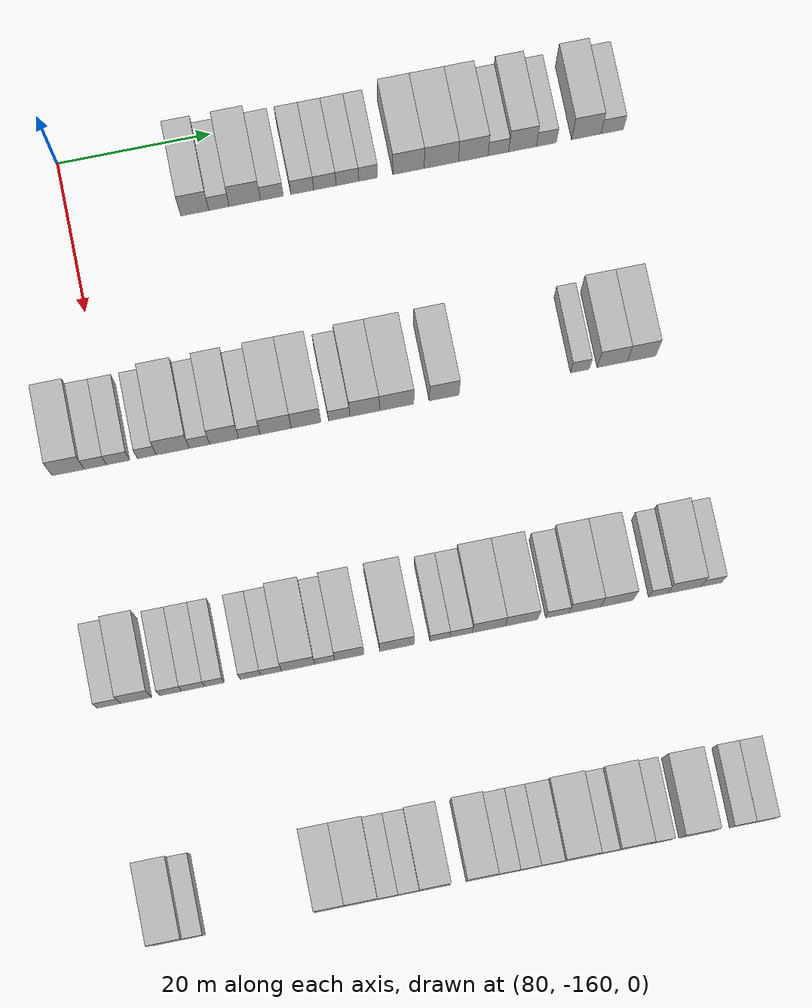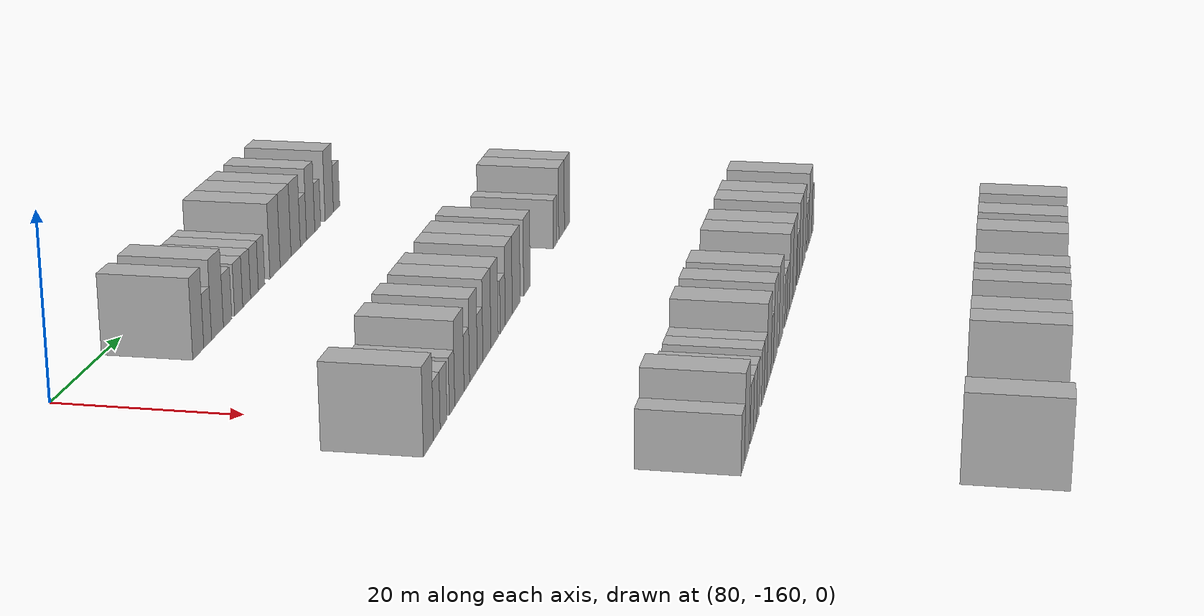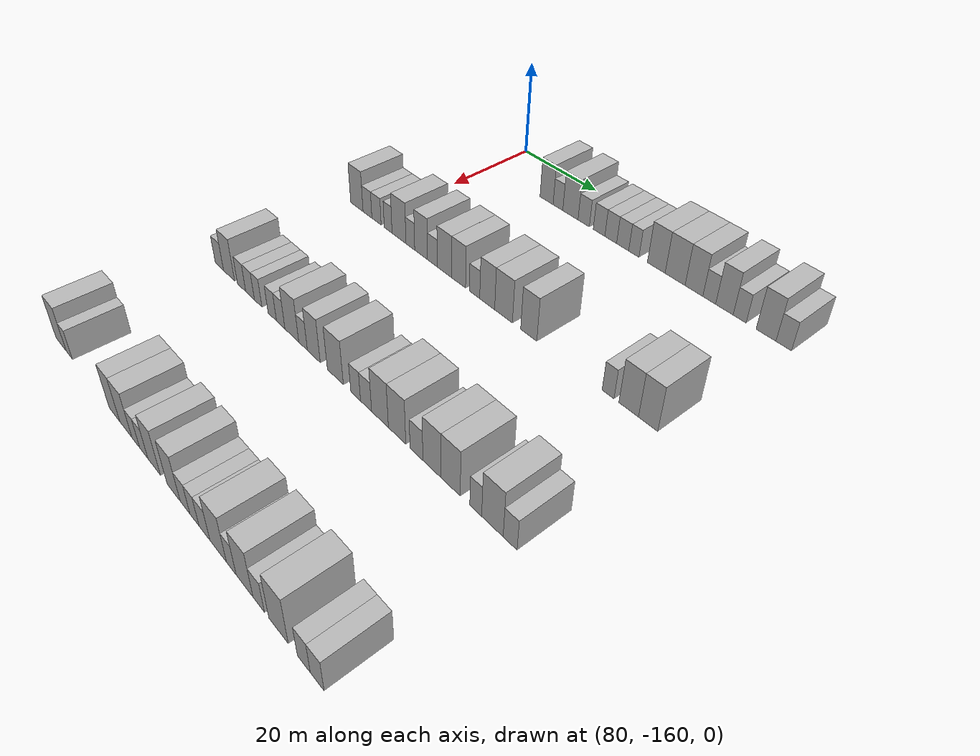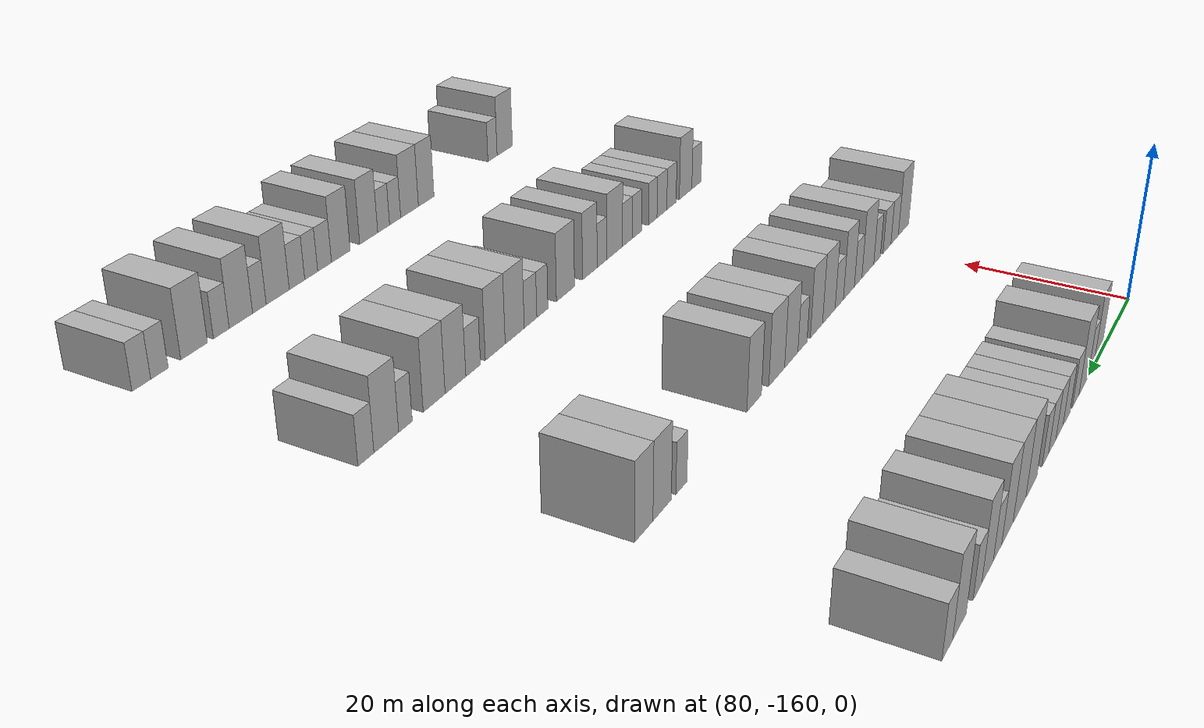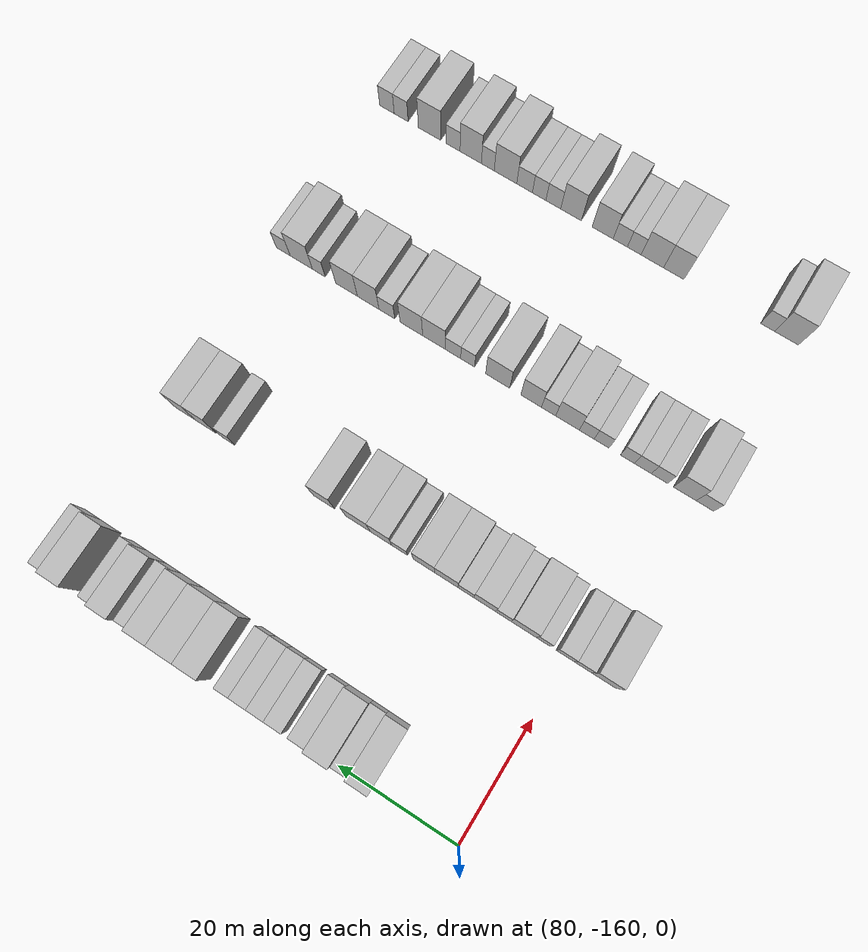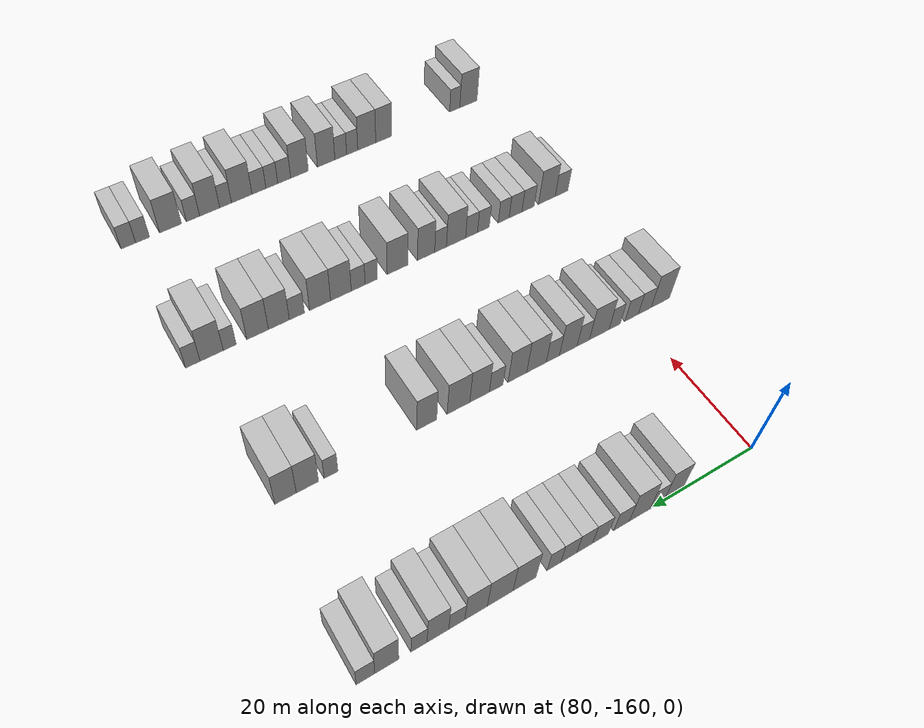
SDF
<sdf version="1.6">
 <world name="default">
  <model name="building_549">
   <static>1</static>
   <pose>85.0000 -143.8746 0 0.000000 0.000000 0.000000</pose>
   <link name="link">
    <pose>0 0 4.50 0 0 0</pose>
    <collision name="collision"><geometry><box><size>10.0000 3.6580 9.0000</size></box></geometry></collision>
    <visual name="visual">
     <cast_shadows>0</cast_shadows>
     <geometry><box><size>10.0000 3.6580 9.0000</size></box></geometry>
     <material>
      <script>
       <uri>model://HANNAS_wall/materials/scripts</uri>
       <uri>model://HANNAS_wall/materials/textures</uri>
       <name>vrc/HANNAS_wall</name>
      </script>
     </material>
    </visual>
   </link>
  </model>
  <model name="building_550">
   <static>1</static>
   <pose>85.0000 -140.7166 0 0.000000 0.000000 0.000000</pose>
   <link name="link">
    <pose>0 0 3.00 0 0 0</pose>
    <collision name="collision"><geometry><box><size>10.0000 2.6581 6.0000</size></box></geometry></collision>
    <visual name="visual">
     <cast_shadows>0</cast_shadows>
     <geometry><box><size>10.0000 2.6581 6.0000</size></box></geometry>
     <material>
      <script>
       <uri>model://HANNAS_wall/materials/scripts</uri>
       <uri>model://HANNAS_wall/materials/textures</uri>
       <name>vrc/HANNAS_wall</name>
      </script>
     </material>
    </visual>
   </link>
  </model>
  <model name="building_551">
   <static>1</static>
   <pose>85.0000 -137.3460 0 0.000000 0.000000 0.000000</pose>
   <link name="link">
    <pose>0 0 4.50 0 0 0</pose>
    <collision name="collision"><geometry><box><size>10.0000 4.0831 9.0000</size></box></geometry></collision>
    <visual name="visual">
     <cast_shadows>0</cast_shadows>
     <geometry><box><size>10.0000 4.0831 9.0000</size></box></geometry>
     <material>
      <script>
       <uri>model://HANNAS_wall/materials/scripts</uri>
       <uri>model://HANNAS_wall/materials/textures</uri>
       <name>vrc/HANNAS_wall</name>
      </script>
     </material>
    </visual>
   </link>
  </model>
  <model name="building_552">
   <static>1</static>
   <pose>85.0000 -133.8197 0 0.000000 0.000000 0.000000</pose>
   <link name="link">
    <pose>0 0 3.00 0 0 0</pose>
    <collision name="collision"><geometry><box><size>10.0000 2.9694 6.0000</size></box></geometry></collision>
    <visual name="visual">
     <cast_shadows>0</cast_shadows>
     <geometry><box><size>10.0000 2.9694 6.0000</size></box></geometry>
     <material>
      <script>
       <uri>model://HANNAS_wall/materials/scripts</uri>
       <uri>model://HANNAS_wall/materials/textures</uri>
       <name>vrc/HANNAS_wall</name>
      </script>
     </material>
    </visual>
   </link>
  </model>
  <model name="building_553">
   <static>1</static>
   <pose>85.0000 -129.8469 0 0.000000 0.000000 0.000000</pose>
   <link name="link">
    <pose>0 0 3.00 0 0 0</pose>
    <collision name="collision"><geometry><box><size>10.0000 2.9761 6.0000</size></box></geometry></collision>
    <visual name="visual">
     <cast_shadows>0</cast_shadows>
     <geometry><box><size>10.0000 2.9761 6.0000</size></box></geometry>
     <material>
      <script>
       <uri>model://HANNAS_wall/materials/scripts</uri>
       <uri>model://HANNAS_wall/materials/textures</uri>
       <name>vrc/HANNAS_wall</name>
      </script>
     </material>
    </visual>
   </link>
  </model>
  <model name="building_554">
   <static>1</static>
   <pose>85.0000 -126.8891 0 0.000000 0.000000 0.000000</pose>
   <link name="link">
    <pose>0 0 3.00 0 0 0</pose>
    <collision name="collision"><geometry><box><size>10.0000 2.9395 6.0000</size></box></geometry></collision>
    <visual name="visual">
     <cast_shadows>0</cast_shadows>
     <geometry><box><size>10.0000 2.9395 6.0000</size></box></geometry>
     <material>
      <script>
       <uri>model://HANNAS_wall/materials/scripts</uri>
       <uri>model://HANNAS_wall/materials/textures</uri>
       <name>vrc/HANNAS_wall</name>
      </script>
     </material>
    </visual>
   </link>
  </model>
  <model name="building_555">
   <static>1</static>
   <pose>85.0000 -123.9394 0 0.000000 0.000000 0.000000</pose>
   <link name="link">
    <pose>0 0 3.00 0 0 0</pose>
    <collision name="collision"><geometry><box><size>10.0000 2.9600 6.0000</size></box></geometry></collision>
    <visual name="visual">
     <cast_shadows>0</cast_shadows>
     <geometry><box><size>10.0000 2.9600 6.0000</size></box></geometry>
     <material>
      <script>
       <uri>model://HANNAS_wall/materials/scripts</uri>
       <uri>model://HANNAS_wall/materials/textures</uri>
       <name>vrc/HANNAS_wall</name>
      </script>
     </material>
    </visual>
   </link>
  </model>
  <model name="building_556">
   <static>1</static>
   <pose>85.0000 -121.2219 0 0.000000 0.000000 0.000000</pose>
   <link name="link">
    <pose>0 0 3.00 0 0 0</pose>
    <collision name="collision"><geometry><box><size>10.0000 2.4749 6.0000</size></box></geometry></collision>
    <visual name="visual">
     <cast_shadows>0</cast_shadows>
     <geometry><box><size>10.0000 2.4749 6.0000</size></box></geometry>
     <material>
      <script>
       <uri>model://HANNAS_wall/materials/scripts</uri>
       <uri>model://HANNAS_wall/materials/textures</uri>
       <name>vrc/HANNAS_wall</name>
      </script>
     </material>
    </visual>
   </link>
  </model>
  <model name="building_557">
   <static>1</static>
   <pose>85.0000 -115.9303 0 0.000000 0.000000 0.000000</pose>
   <link name="link">
    <pose>0 0 4.50 0 0 0</pose>
    <collision name="collision"><geometry><box><size>10.0000 4.1082 9.0000</size></box></geometry></collision>
    <visual name="visual">
     <cast_shadows>0</cast_shadows>
     <geometry><box><size>10.0000 4.1082 9.0000</size></box></geometry>
     <material>
      <script>
       <uri>model://HANNAS_wall/materials/scripts</uri>
       <uri>model://HANNAS_wall/materials/textures</uri>
       <name>vrc/HANNAS_wall</name>
      </script>
     </material>
    </visual>
   </link>
  </model>
  <model name="building_558">
   <static>1</static>
   <pose>85.0000 -111.6318 0 0.000000 0.000000 0.000000</pose>
   <link name="link">
    <pose>0 0 4.50 0 0 0</pose>
    <collision name="collision"><geometry><box><size>10.0000 4.4888 9.0000</size></box></geometry></collision>
    <visual name="visual">
     <cast_shadows>0</cast_shadows>
     <geometry><box><size>10.0000 4.4888 9.0000</size></box></geometry>
     <material>
      <script>
       <uri>model://HANNAS_wall/materials/scripts</uri>
       <uri>model://HANNAS_wall/materials/textures</uri>
       <name>vrc/HANNAS_wall</name>
      </script>
     </material>
    </visual>
   </link>
  </model>
  <model name="building_559">
   <static>1</static>
   <pose>85.0000 -107.4463 0 0.000000 0.000000 0.000000</pose>
   <link name="link">
    <pose>0 0 4.50 0 0 0</pose>
    <collision name="collision"><geometry><box><size>10.0000 3.8822 9.0000</size></box></geometry></collision>
    <visual name="visual">
     <cast_shadows>0</cast_shadows>
     <geometry><box><size>10.0000 3.8822 9.0000</size></box></geometry>
     <material>
      <script>
       <uri>model://HANNAS_wall/materials/scripts</uri>
       <uri>model://HANNAS_wall/materials/textures</uri>
       <name>vrc/HANNAS_wall</name>
      </script>
     </material>
    </visual>
   </link>
  </model>
  <model name="building_560">
   <static>1</static>
   <pose>85.0000 -104.1441 0 0.000000 0.000000 0.000000</pose>
   <link name="link">
    <pose>0 0 3.00 0 0 0</pose>
    <collision name="collision"><geometry><box><size>10.0000 2.7223 6.0000</size></box></geometry></collision>
    <visual name="visual">
     <cast_shadows>0</cast_shadows>
     <geometry><box><size>10.0000 2.7223 6.0000</size></box></geometry>
     <material>
      <script>
       <uri>model://HANNAS_wall/materials/scripts</uri>
       <uri>model://HANNAS_wall/materials/textures</uri>
       <name>vrc/HANNAS_wall</name>
      </script>
     </material>
    </visual>
   </link>
  </model>
  <model name="building_561">
   <static>1</static>
   <pose>85.0000 -100.9658 0 0.000000 0.000000 0.000000</pose>
   <link name="link">
    <pose>0 0 4.50 0 0 0</pose>
    <collision name="collision"><geometry><box><size>10.0000 3.6344 9.0000</size></box></geometry></collision>
    <visual name="visual">
     <cast_shadows>0</cast_shadows>
     <geometry><box><size>10.0000 3.6344 9.0000</size></box></geometry>
     <material>
      <script>
       <uri>model://HANNAS_wall/materials/scripts</uri>
       <uri>model://HANNAS_wall/materials/textures</uri>
       <name>vrc/HANNAS_wall</name>
      </script>
     </material>
    </visual>
   </link>
  </model>
  <model name="building_562">
   <static>1</static>
   <pose>85.0000 -97.8252 0 0.000000 0.000000 0.000000</pose>
   <link name="link">
    <pose>0 0 3.00 0 0 0</pose>
    <collision name="collision"><geometry><box><size>10.0000 2.6467 6.0000</size></box></geometry></collision>
    <visual name="visual">
     <cast_shadows>0</cast_shadows>
     <geometry><box><size>10.0000 2.6467 6.0000</size></box></geometry>
     <material>
      <script>
       <uri>model://HANNAS_wall/materials/scripts</uri>
       <uri>model://HANNAS_wall/materials/textures</uri>
       <name>vrc/HANNAS_wall</name>
      </script>
     </material>
    </visual>
   </link>
  </model>
  <model name="building_563">
   <static>1</static>
   <pose>85.0000 -92.5672 0 0.000000 0.000000 0.000000</pose>
   <link name="link">
    <pose>0 0 4.50 0 0 0</pose>
    <collision name="collision"><geometry><box><size>10.0000 3.8693 9.0000</size></box></geometry></collision>
    <visual name="visual">
     <cast_shadows>0</cast_shadows>
     <geometry><box><size>10.0000 3.8693 9.0000</size></box></geometry>
     <material>
      <script>
       <uri>model://HANNAS_wall/materials/scripts</uri>
       <uri>model://HANNAS_wall/materials/textures</uri>
       <name>vrc/HANNAS_wall</name>
      </script>
     </material>
    </visual>
   </link>
  </model>
  <model name="building_564">
   <static>1</static>
   <pose>85.0000 -89.1519 0 0.000000 0.000000 0.000000</pose>
   <link name="link">
    <pose>0 0 3.00 0 0 0</pose>
    <collision name="collision"><geometry><box><size>10.0000 2.9613 6.0000</size></box></geometry></collision>
    <visual name="visual">
     <cast_shadows>0</cast_shadows>
     <geometry><box><size>10.0000 2.9613 6.0000</size></box></geometry>
     <material>
      <script>
       <uri>model://HANNAS_wall/materials/scripts</uri>
       <uri>model://HANNAS_wall/materials/textures</uri>
       <name>vrc/HANNAS_wall</name>
      </script>
     </material>
    </visual>
   </link>
  </model>
  <model name="building_778">
   <static>1</static>
   <pose>115.0000 -165.8197 0 0.000000 0.000000 0.000000</pose>
   <link name="link">
    <pose>0 0 4.50 0 0 0</pose>
    <collision name="collision"><geometry><box><size>10.0000 4.1062 9.0000</size></box></geometry></collision>
    <visual name="visual">
     <cast_shadows>0</cast_shadows>
     <geometry><box><size>10.0000 4.1062 9.0000</size></box></geometry>
     <material>
      <script>
       <uri>model://HANNAS_wall/materials/scripts</uri>
       <uri>model://HANNAS_wall/materials/textures</uri>
       <name>vrc/HANNAS_wall</name>
      </script>
     </material>
    </visual>
   </link>
  </model>
  <model name="building_779">
   <static>1</static>
   <pose>115.0000 -162.3238 0 0.000000 0.000000 0.000000</pose>
   <link name="link">
    <pose>0 0 3.00 0 0 0</pose>
    <collision name="collision"><geometry><box><size>10.0000 2.8855 6.0000</size></box></geometry></collision>
    <visual name="visual">
     <cast_shadows>0</cast_shadows>
     <geometry><box><size>10.0000 2.8855 6.0000</size></box></geometry>
     <material>
      <script>
       <uri>model://HANNAS_wall/materials/scripts</uri>
       <uri>model://HANNAS_wall/materials/textures</uri>
       <name>vrc/HANNAS_wall</name>
      </script>
     </material>
    </visual>
   </link>
  </model>
  <model name="building_780">
   <static>1</static>
   <pose>115.0000 -159.4005 0 0.000000 0.000000 0.000000</pose>
   <link name="link">
    <pose>0 0 3.00 0 0 0</pose>
    <collision name="collision"><geometry><box><size>10.0000 2.9611 6.0000</size></box></geometry></collision>
    <visual name="visual">
     <cast_shadows>0</cast_shadows>
     <geometry><box><size>10.0000 2.9611 6.0000</size></box></geometry>
     <material>
      <script>
       <uri>model://HANNAS_wall/materials/scripts</uri>
       <uri>model://HANNAS_wall/materials/textures</uri>
       <name>vrc/HANNAS_wall</name>
      </script>
     </material>
    </visual>
   </link>
  </model>
  <model name="building_781">
   <static>1</static>
   <pose>115.0000 -155.7059 0 0.000000 0.000000 0.000000</pose>
   <link name="link">
    <pose>0 0 3.00 0 0 0</pose>
    <collision name="collision"><geometry><box><size>10.0000 2.4281 6.0000</size></box></geometry></collision>
    <visual name="visual">
     <cast_shadows>0</cast_shadows>
     <geometry><box><size>10.0000 2.4281 6.0000</size></box></geometry>
     <material>
      <script>
       <uri>model://HANNAS_wall/materials/scripts</uri>
       <uri>model://HANNAS_wall/materials/textures</uri>
       <name>vrc/HANNAS_wall</name>
      </script>
     </material>
    </visual>
   </link>
  </model>
  <model name="building_782">
   <static>1</static>
   <pose>115.0000 -152.3639 0 0.000000 0.000000 0.000000</pose>
   <link name="link">
    <pose>0 0 4.50 0 0 0</pose>
    <collision name="collision"><geometry><box><size>10.0000 4.2559 9.0000</size></box></geometry></collision>
    <visual name="visual">
     <cast_shadows>0</cast_shadows>
     <geometry><box><size>10.0000 4.2559 9.0000</size></box></geometry>
     <material>
      <script>
       <uri>model://HANNAS_wall/materials/scripts</uri>
       <uri>model://HANNAS_wall/materials/textures</uri>
       <name>vrc/HANNAS_wall</name>
      </script>
     </material>
    </visual>
   </link>
  </model>
  <model name="building_783">
   <static>1</static>
   <pose>115.0000 -148.9305 0 0.000000 0.000000 0.000000</pose>
   <link name="link">
    <pose>0 0 3.00 0 0 0</pose>
    <collision name="collision"><geometry><box><size>10.0000 2.6109 6.0000</size></box></geometry></collision>
    <visual name="visual">
     <cast_shadows>0</cast_shadows>
     <geometry><box><size>10.0000 2.6109 6.0000</size></box></geometry>
     <material>
      <script>
       <uri>model://HANNAS_wall/materials/scripts</uri>
       <uri>model://HANNAS_wall/materials/textures</uri>
       <name>vrc/HANNAS_wall</name>
      </script>
     </material>
    </visual>
   </link>
  </model>
  <model name="building_784">
   <static>1</static>
   <pose>115.0000 -145.7602 0 0.000000 0.000000 0.000000</pose>
   <link name="link">
    <pose>0 0 4.50 0 0 0</pose>
    <collision name="collision"><geometry><box><size>10.0000 3.7297 9.0000</size></box></geometry></collision>
    <visual name="visual">
     <cast_shadows>0</cast_shadows>
     <geometry><box><size>10.0000 3.7297 9.0000</size></box></geometry>
     <material>
      <script>
       <uri>model://HANNAS_wall/materials/scripts</uri>
       <uri>model://HANNAS_wall/materials/textures</uri>
       <name>vrc/HANNAS_wall</name>
      </script>
     </material>
    </visual>
   </link>
  </model>
  <model name="building_785">
   <static>1</static>
   <pose>115.0000 -142.5206 0 0.000000 0.000000 0.000000</pose>
   <link name="link">
    <pose>0 0 3.00 0 0 0</pose>
    <collision name="collision"><geometry><box><size>10.0000 2.7495 6.0000</size></box></geometry></collision>
    <visual name="visual">
     <cast_shadows>0</cast_shadows>
     <geometry><box><size>10.0000 2.7495 6.0000</size></box></geometry>
     <material>
      <script>
       <uri>model://HANNAS_wall/materials/scripts</uri>
       <uri>model://HANNAS_wall/materials/textures</uri>
       <name>vrc/HANNAS_wall</name>
      </script>
     </material>
    </visual>
   </link>
  </model>
  <model name="building_786">
   <static>1</static>
   <pose>115.0000 -139.1405 0 0.000000 0.000000 0.000000</pose>
   <link name="link">
    <pose>0 0 4.50 0 0 0</pose>
    <collision name="collision"><geometry><box><size>10.0000 4.0107 9.0000</size></box></geometry></collision>
    <visual name="visual">
     <cast_shadows>0</cast_shadows>
     <geometry><box><size>10.0000 4.0107 9.0000</size></box></geometry>
     <material>
      <script>
       <uri>model://HANNAS_wall/materials/scripts</uri>
       <uri>model://HANNAS_wall/materials/textures</uri>
       <name>vrc/HANNAS_wall</name>
      </script>
     </material>
    </visual>
   </link>
  </model>
  <model name="building_787">
   <static>1</static>
   <pose>115.0000 -135.2319 0 0.000000 0.000000 0.000000</pose>
   <link name="link">
    <pose>0 0 4.50 0 0 0</pose>
    <collision name="collision"><geometry><box><size>10.0000 3.8064 9.0000</size></box></geometry></collision>
    <visual name="visual">
     <cast_shadows>0</cast_shadows>
     <geometry><box><size>10.0000 3.8064 9.0000</size></box></geometry>
     <material>
      <script>
       <uri>model://HANNAS_wall/materials/scripts</uri>
       <uri>model://HANNAS_wall/materials/textures</uri>
       <name>vrc/HANNAS_wall</name>
      </script>
     </material>
    </visual>
   </link>
  </model>
  <model name="building_788">
   <static>1</static>
   <pose>115.0000 -130.9615 0 0.000000 0.000000 0.000000</pose>
   <link name="link">
    <pose>0 0 3.00 0 0 0</pose>
    <collision name="collision"><geometry><box><size>10.0000 2.7345 6.0000</size></box></geometry></collision>
    <visual name="visual">
     <cast_shadows>0</cast_shadows>
     <geometry><box><size>10.0000 2.7345 6.0000</size></box></geometry>
     <material>
      <script>
       <uri>model://HANNAS_wall/materials/scripts</uri>
       <uri>model://HANNAS_wall/materials/textures</uri>
       <name>vrc/HANNAS_wall</name>
      </script>
     </material>
    </visual>
   </link>
  </model>
  <model name="building_789">
   <static>1</static>
   <pose>115.0000 -127.6730 0 0.000000 0.000000 0.000000</pose>
   <link name="link">
    <pose>0 0 4.50 0 0 0</pose>
    <collision name="collision"><geometry><box><size>10.0000 3.8423 9.0000</size></box></geometry></collision>
    <visual name="visual">
     <cast_shadows>0</cast_shadows>
     <geometry><box><size>10.0000 3.8423 9.0000</size></box></geometry>
     <material>
      <script>
       <uri>model://HANNAS_wall/materials/scripts</uri>
       <uri>model://HANNAS_wall/materials/textures</uri>
       <name>vrc/HANNAS_wall</name>
      </script>
     </material>
    </visual>
   </link>
  </model>
  <model name="building_790">
   <static>1</static>
   <pose>115.0000 -123.5418 0 0.000000 0.000000 0.000000</pose>
   <link name="link">
    <pose>0 0 4.50 0 0 0</pose>
    <collision name="collision"><geometry><box><size>10.0000 4.4201 9.0000</size></box></geometry></collision>
    <visual name="visual">
     <cast_shadows>0</cast_shadows>
     <geometry><box><size>10.0000 4.4201 9.0000</size></box></geometry>
     <material>
      <script>
       <uri>model://HANNAS_wall/materials/scripts</uri>
       <uri>model://HANNAS_wall/materials/textures</uri>
       <name>vrc/HANNAS_wall</name>
      </script>
     </material>
    </visual>
   </link>
  </model>
  <model name="building_791">
   <static>1</static>
   <pose>115.0000 -117.4109 0 0.000000 0.000000 0.000000</pose>
   <link name="link">
    <pose>0 0 4.50 0 0 0</pose>
    <collision name="collision"><geometry><box><size>10.0000 3.8419 9.0000</size></box></geometry></collision>
    <visual name="visual">
     <cast_shadows>0</cast_shadows>
     <geometry><box><size>10.0000 3.8419 9.0000</size></box></geometry>
     <material>
      <script>
       <uri>model://HANNAS_wall/materials/scripts</uri>
       <uri>model://HANNAS_wall/materials/textures</uri>
       <name>vrc/HANNAS_wall</name>
      </script>
     </material>
    </visual>
   </link>
  </model>
  <model name="building_792">
   <static>1</static>
   <pose>115.0000 -99.8164 0 0.000000 0.000000 0.000000</pose>
   <link name="link">
    <pose>0 0 3.00 0 0 0</pose>
    <collision name="collision"><geometry><box><size>10.0000 2.4490 6.0000</size></box></geometry></collision>
    <visual name="visual">
     <cast_shadows>0</cast_shadows>
     <geometry><box><size>10.0000 2.4490 6.0000</size></box></geometry>
     <material>
      <script>
       <uri>model://HANNAS_wall/materials/scripts</uri>
       <uri>model://HANNAS_wall/materials/textures</uri>
       <name>vrc/HANNAS_wall</name>
      </script>
     </material>
    </visual>
   </link>
  </model>
  <model name="building_793">
   <static>1</static>
   <pose>115.0000 -95.6445 0 0.000000 0.000000 0.000000</pose>
   <link name="link">
    <pose>0 0 4.50 0 0 0</pose>
    <collision name="collision"><geometry><box><size>10.0000 3.8947 9.0000</size></box></geometry></collision>
    <visual name="visual">
     <cast_shadows>0</cast_shadows>
     <geometry><box><size>10.0000 3.8947 9.0000</size></box></geometry>
     <material>
      <script>
       <uri>model://HANNAS_wall/materials/scripts</uri>
       <uri>model://HANNAS_wall/materials/textures</uri>
       <name>vrc/HANNAS_wall</name>
      </script>
     </material>
    </visual>
   </link>
  </model>
  <model name="building_794">
   <static>1</static>
   <pose>115.0000 -91.8324 0 0.000000 0.000000 0.000000</pose>
   <link name="link">
    <pose>0 0 4.50 0 0 0</pose>
    <collision name="collision"><geometry><box><size>10.0000 3.7295 9.0000</size></box></geometry></collision>
    <visual name="visual">
     <cast_shadows>0</cast_shadows>
     <geometry><box><size>10.0000 3.7295 9.0000</size></box></geometry>
     <material>
      <script>
       <uri>model://HANNAS_wall/materials/scripts</uri>
       <uri>model://HANNAS_wall/materials/textures</uri>
       <name>vrc/HANNAS_wall</name>
      </script>
     </material>
    </visual>
   </link>
  </model>
  <model name="building_979">
   <static>1</static>
   <pose>145.0000 -166.0558 0 0.000000 0.000000 0.000000</pose>
   <link name="link">
    <pose>0 0 3.00 0 0 0</pose>
    <collision name="collision"><geometry><box><size>10.0000 2.9615 6.0000</size></box></geometry></collision>
    <visual name="visual">
     <cast_shadows>0</cast_shadows>
     <geometry><box><size>10.0000 2.9615 6.0000</size></box></geometry>
     <material>
      <script>
       <uri>model://HANNAS_wall/materials/scripts</uri>
       <uri>model://HANNAS_wall/materials/textures</uri>
       <name>vrc/HANNAS_wall</name>
      </script>
     </material>
    </visual>
   </link>
  </model>
  <model name="building_980">
   <static>1</static>
   <pose>145.0000 -162.6196 0 0.000000 0.000000 0.000000</pose>
   <link name="link">
    <pose>0 0 4.50 0 0 0</pose>
    <collision name="collision"><geometry><box><size>10.0000 3.9108 9.0000</size></box></geometry></collision>
    <visual name="visual">
     <cast_shadows>0</cast_shadows>
     <geometry><box><size>10.0000 3.9108 9.0000</size></box></geometry>
     <material>
      <script>
       <uri>model://HANNAS_wall/materials/scripts</uri>
       <uri>model://HANNAS_wall/materials/textures</uri>
       <name>vrc/HANNAS_wall</name>
      </script>
     </material>
    </visual>
   </link>
  </model>
  <model name="building_981">
   <static>1</static>
   <pose>145.0000 -158.2537 0 0.000000 0.000000 0.000000</pose>
   <link name="link">
    <pose>0 0 3.00 0 0 0</pose>
    <collision name="collision"><geometry><box><size>10.0000 2.8211 6.0000</size></box></geometry></collision>
    <visual name="visual">
     <cast_shadows>0</cast_shadows>
     <geometry><box><size>10.0000 2.8211 6.0000</size></box></geometry>
     <material>
      <script>
       <uri>model://HANNAS_wall/materials/scripts</uri>
       <uri>model://HANNAS_wall/materials/textures</uri>
       <name>vrc/HANNAS_wall</name>
      </script>
     </material>
    </visual>
   </link>
  </model>
  <model name="building_982">
   <static>1</static>
   <pose>145.0000 -155.3823 0 0.000000 0.000000 0.000000</pose>
   <link name="link">
    <pose>0 0 3.00 0 0 0</pose>
    <collision name="collision"><geometry><box><size>10.0000 2.9216 6.0000</size></box></geometry></collision>
    <visual name="visual">
     <cast_shadows>0</cast_shadows>
     <geometry><box><size>10.0000 2.9216 6.0000</size></box></geometry>
     <material>
      <script>
       <uri>model://HANNAS_wall/materials/scripts</uri>
       <uri>model://HANNAS_wall/materials/textures</uri>
       <name>vrc/HANNAS_wall</name>
      </script>
     </material>
    </visual>
   </link>
  </model>
  <model name="building_983">
   <static>1</static>
   <pose>145.0000 -152.6942 0 0.000000 0.000000 0.000000</pose>
   <link name="link">
    <pose>0 0 3.00 0 0 0</pose>
    <collision name="collision"><geometry><box><size>10.0000 2.4547 6.0000</size></box></geometry></collision>
    <visual name="visual">
     <cast_shadows>0</cast_shadows>
     <geometry><box><size>10.0000 2.4547 6.0000</size></box></geometry>
     <material>
      <script>
       <uri>model://HANNAS_wall/materials/scripts</uri>
       <uri>model://HANNAS_wall/materials/textures</uri>
       <name>vrc/HANNAS_wall</name>
      </script>
     </material>
    </visual>
   </link>
  </model>
  <model name="building_984">
   <static>1</static>
   <pose>145.0000 -148.1484 0 0.000000 0.000000 0.000000</pose>
   <link name="link">
    <pose>0 0 3.00 0 0 0</pose>
    <collision name="collision"><geometry><box><size>10.0000 2.6369 6.0000</size></box></geometry></collision>
    <visual name="visual">
     <cast_shadows>0</cast_shadows>
     <geometry><box><size>10.0000 2.6369 6.0000</size></box></geometry>
     <material>
      <script>
       <uri>model://HANNAS_wall/materials/scripts</uri>
       <uri>model://HANNAS_wall/materials/textures</uri>
       <name>vrc/HANNAS_wall</name>
      </script>
     </material>
    </visual>
   </link>
  </model>
  <model name="building_985">
   <static>1</static>
   <pose>145.0000 -145.5133 0 0.000000 0.000000 0.000000</pose>
   <link name="link">
    <pose>0 0 3.00 0 0 0</pose>
    <collision name="collision"><geometry><box><size>10.0000 2.6333 6.0000</size></box></geometry></collision>
    <visual name="visual">
     <cast_shadows>0</cast_shadows>
     <geometry><box><size>10.0000 2.6333 6.0000</size></box></geometry>
     <material>
      <script>
       <uri>model://HANNAS_wall/materials/scripts</uri>
       <uri>model://HANNAS_wall/materials/textures</uri>
       <name>vrc/HANNAS_wall</name>
      </script>
     </material>
    </visual>
   </link>
  </model>
  <model name="building_986">
   <static>1</static>
   <pose>145.0000 -142.0961 0 0.000000 0.000000 0.000000</pose>
   <link name="link">
    <pose>0 0 4.50 0 0 0</pose>
    <collision name="collision"><geometry><box><size>10.0000 4.2010 9.0000</size></box></geometry></collision>
    <visual name="visual">
     <cast_shadows>0</cast_shadows>
     <geometry><box><size>10.0000 4.2010 9.0000</size></box></geometry>
     <material>
      <script>
       <uri>model://HANNAS_wall/materials/scripts</uri>
       <uri>model://HANNAS_wall/materials/textures</uri>
       <name>vrc/HANNAS_wall</name>
      </script>
     </material>
    </visual>
   </link>
  </model>
  <model name="building_987">
   <static>1</static>
   <pose>145.0000 -138.7237 0 0.000000 0.000000 0.000000</pose>
   <link name="link">
    <pose>0 0 3.00 0 0 0</pose>
    <collision name="collision"><geometry><box><size>10.0000 2.5438 6.0000</size></box></geometry></collision>
    <visual name="visual">
     <cast_shadows>0</cast_shadows>
     <geometry><box><size>10.0000 2.5438 6.0000</size></box></geometry>
     <material>
      <script>
       <uri>model://HANNAS_wall/materials/scripts</uri>
       <uri>model://HANNAS_wall/materials/textures</uri>
       <name>vrc/HANNAS_wall</name>
      </script>
     </material>
    </visual>
   </link>
  </model>
  <model name="building_988">
   <static>1</static>
   <pose>145.0000 -135.5985 0 0.000000 0.000000 0.000000</pose>
   <link name="link">
    <pose>0 0 4.50 0 0 0</pose>
    <collision name="collision"><geometry><box><size>10.0000 3.7066 9.0000</size></box></geometry></collision>
    <visual name="visual">
     <cast_shadows>0</cast_shadows>
     <geometry><box><size>10.0000 3.7066 9.0000</size></box></geometry>
     <material>
      <script>
       <uri>model://HANNAS_wall/materials/scripts</uri>
       <uri>model://HANNAS_wall/materials/textures</uri>
       <name>vrc/HANNAS_wall</name>
      </script>
     </material>
    </visual>
   </link>
  </model>
  <model name="building_989">
   <static>1</static>
   <pose>145.0000 -129.5574 0 0.000000 0.000000 0.000000</pose>
   <link name="link">
    <pose>0 0 4.50 0 0 0</pose>
    <collision name="collision"><geometry><box><size>10.0000 4.3756 9.0000</size></box></geometry></collision>
    <visual name="visual">
     <cast_shadows>0</cast_shadows>
     <geometry><box><size>10.0000 4.3756 9.0000</size></box></geometry>
     <material>
      <script>
       <uri>model://HANNAS_wall/materials/scripts</uri>
       <uri>model://HANNAS_wall/materials/textures</uri>
       <name>vrc/HANNAS_wall</name>
      </script>
     </material>
    </visual>
   </link>
  </model>
  <model name="building_990">
   <static>1</static>
   <pose>145.0000 -124.0909 0 0.000000 0.000000 0.000000</pose>
   <link name="link">
    <pose>0 0 3.00 0 0 0</pose>
    <collision name="collision"><geometry><box><size>10.0000 2.5576 6.0000</size></box></geometry></collision>
    <visual name="visual">
     <cast_shadows>0</cast_shadows>
     <geometry><box><size>10.0000 2.5576 6.0000</size></box></geometry>
     <material>
      <script>
       <uri>model://HANNAS_wall/materials/scripts</uri>
       <uri>model://HANNAS_wall/materials/textures</uri>
       <name>vrc/HANNAS_wall</name>
      </script>
     </material>
    </visual>
   </link>
  </model>
  <model name="building_991">
   <static>1</static>
   <pose>145.0000 -121.3927 0 0.000000 0.000000 0.000000</pose>
   <link name="link">
    <pose>0 0 3.00 0 0 0</pose>
    <collision name="collision"><geometry><box><size>10.0000 2.8387 6.0000</size></box></geometry></collision>
    <visual name="visual">
     <cast_shadows>0</cast_shadows>
     <geometry><box><size>10.0000 2.8387 6.0000</size></box></geometry>
     <material>
      <script>
       <uri>model://HANNAS_wall/materials/scripts</uri>
       <uri>model://HANNAS_wall/materials/textures</uri>
       <name>vrc/HANNAS_wall</name>
      </script>
     </material>
    </visual>
   </link>
  </model>
  <model name="building_992">
   <static>1</static>
   <pose>145.0000 -117.8856 0 0.000000 0.000000 0.000000</pose>
   <link name="link">
    <pose>0 0 4.50 0 0 0</pose>
    <collision name="collision"><geometry><box><size>10.0000 4.1756 9.0000</size></box></geometry></collision>
    <visual name="visual">
     <cast_shadows>0</cast_shadows>
     <geometry><box><size>10.0000 4.1756 9.0000</size></box></geometry>
     <material>
      <script>
       <uri>model://HANNAS_wall/materials/scripts</uri>
       <uri>model://HANNAS_wall/materials/textures</uri>
       <name>vrc/HANNAS_wall</name>
      </script>
     </material>
    </visual>
   </link>
  </model>
  <model name="building_993">
   <static>1</static>
   <pose>145.0000 -113.7057 0 0.000000 0.000000 0.000000</pose>
   <link name="link">
    <pose>0 0 4.50 0 0 0</pose>
    <collision name="collision"><geometry><box><size>10.0000 4.1841 9.0000</size></box></geometry></collision>
    <visual name="visual">
     <cast_shadows>0</cast_shadows>
     <geometry><box><size>10.0000 4.1841 9.0000</size></box></geometry>
     <material>
      <script>
       <uri>model://HANNAS_wall/materials/scripts</uri>
       <uri>model://HANNAS_wall/materials/textures</uri>
       <name>vrc/HANNAS_wall</name>
      </script>
     </material>
    </visual>
   </link>
  </model>
  <model name="building_994">
   <static>1</static>
   <pose>145.0000 -109.1292 0 0.000000 0.000000 0.000000</pose>
   <link name="link">
    <pose>0 0 3.00 0 0 0</pose>
    <collision name="collision"><geometry><box><size>10.0000 2.9689 6.0000</size></box></geometry></collision>
    <visual name="visual">
     <cast_shadows>0</cast_shadows>
     <geometry><box><size>10.0000 2.9689 6.0000</size></box></geometry>
     <material>
      <script>
       <uri>model://HANNAS_wall/materials/scripts</uri>
       <uri>model://HANNAS_wall/materials/textures</uri>
       <name>vrc/HANNAS_wall</name>
      </script>
     </material>
    </visual>
   </link>
  </model>
  <model name="building_995">
   <static>1</static>
   <pose>145.0000 -105.6139 0 0.000000 0.000000 0.000000</pose>
   <link name="link">
    <pose>0 0 4.50 0 0 0</pose>
    <collision name="collision"><geometry><box><size>10.0000 4.0617 9.0000</size></box></geometry></collision>
    <visual name="visual">
     <cast_shadows>0</cast_shadows>
     <geometry><box><size>10.0000 4.0617 9.0000</size></box></geometry>
     <material>
      <script>
       <uri>model://HANNAS_wall/materials/scripts</uri>
       <uri>model://HANNAS_wall/materials/textures</uri>
       <name>vrc/HANNAS_wall</name>
      </script>
     </material>
    </visual>
   </link>
  </model>
  <model name="building_996">
   <static>1</static>
   <pose>145.0000 -101.5145 0 0.000000 0.000000 0.000000</pose>
   <link name="link">
    <pose>0 0 4.50 0 0 0</pose>
    <collision name="collision"><geometry><box><size>10.0000 4.1372 9.0000</size></box></geometry></collision>
    <visual name="visual">
     <cast_shadows>0</cast_shadows>
     <geometry><box><size>10.0000 4.1372 9.0000</size></box></geometry>
     <material>
      <script>
       <uri>model://HANNAS_wall/materials/scripts</uri>
       <uri>model://HANNAS_wall/materials/textures</uri>
       <name>vrc/HANNAS_wall</name>
      </script>
     </material>
    </visual>
   </link>
  </model>
  <model name="building_997">
   <static>1</static>
   <pose>145.0000 -96.2281 0 0.000000 0.000000 0.000000</pose>
   <link name="link">
    <pose>0 0 3.00 0 0 0</pose>
    <collision name="collision"><geometry><box><size>10.0000 2.4356 6.0000</size></box></geometry></collision>
    <visual name="visual">
     <cast_shadows>0</cast_shadows>
     <geometry><box><size>10.0000 2.4356 6.0000</size></box></geometry>
     <material>
      <script>
       <uri>model://HANNAS_wall/materials/scripts</uri>
       <uri>model://HANNAS_wall/materials/textures</uri>
       <name>vrc/HANNAS_wall</name>
      </script>
     </material>
    </visual>
   </link>
  </model>
  <model name="building_998">
   <static>1</static>
   <pose>145.0000 -92.8648 0 0.000000 0.000000 0.000000</pose>
   <link name="link">
    <pose>0 0 4.50 0 0 0</pose>
    <collision name="collision"><geometry><box><size>10.0000 4.2911 9.0000</size></box></geometry></collision>
    <visual name="visual">
     <cast_shadows>0</cast_shadows>
     <geometry><box><size>10.0000 4.2911 9.0000</size></box></geometry>
     <material>
      <script>
       <uri>model://HANNAS_wall/materials/scripts</uri>
       <uri>model://HANNAS_wall/materials/textures</uri>
       <name>vrc/HANNAS_wall</name>
      </script>
     </material>
    </visual>
   </link>
  </model>
  <model name="building_999">
   <static>1</static>
   <pose>145.0000 -89.3780 0 0.000000 0.000000 0.000000</pose>
   <link name="link">
    <pose>0 0 3.00 0 0 0</pose>
    <collision name="collision"><geometry><box><size>10.0000 2.6823 6.0000</size></box></geometry></collision>
    <visual name="visual">
     <cast_shadows>0</cast_shadows>
     <geometry><box><size>10.0000 2.6823 6.0000</size></box></geometry>
     <material>
      <script>
       <uri>model://HANNAS_wall/materials/scripts</uri>
       <uri>model://HANNAS_wall/materials/textures</uri>
       <name>vrc/HANNAS_wall</name>
      </script>
     </material>
    </visual>
   </link>
  </model>
  <model name="building_1217">
   <static>1</static>
   <pose>175.0000 -164.1500 0 0.000000 0.000000 0.000000</pose>
   <link name="link">
    <pose>0 0 4.50 0 0 0</pose>
    <collision name="collision"><geometry><box><size>10.0000 4.2024 9.0000</size></box></geometry></collision>
    <visual name="visual">
     <cast_shadows>0</cast_shadows>
     <geometry><box><size>10.0000 4.2024 9.0000</size></box></geometry>
     <material>
      <script>
       <uri>model://HANNAS_wall/materials/scripts</uri>
       <uri>model://HANNAS_wall/materials/textures</uri>
       <name>vrc/HANNAS_wall</name>
      </script>
     </material>
    </visual>
   </link>
  </model>
  <model name="building_1218">
   <static>1</static>
   <pose>175.0000 -160.8084 0 0.000000 0.000000 0.000000</pose>
   <link name="link">
    <pose>0 0 3.00 0 0 0</pose>
    <collision name="collision"><geometry><box><size>10.0000 2.4808 6.0000</size></box></geometry></collision>
    <visual name="visual">
     <cast_shadows>0</cast_shadows>
     <geometry><box><size>10.0000 2.4808 6.0000</size></box></geometry>
     <material>
      <script>
       <uri>model://HANNAS_wall/materials/scripts</uri>
       <uri>model://HANNAS_wall/materials/textures</uri>
       <name>vrc/HANNAS_wall</name>
      </script>
     </material>
    </visual>
   </link>
  </model>
  <model name="building_1219">
   <static>1</static>
   <pose>175.0000 -143.9784 0 0.000000 0.000000 0.000000</pose>
   <link name="link">
    <pose>0 0 4.50 0 0 0</pose>
    <collision name="collision"><geometry><box><size>10.0000 3.7264 9.0000</size></box></geometry></collision>
    <visual name="visual">
     <cast_shadows>0</cast_shadows>
     <geometry><box><size>10.0000 3.7264 9.0000</size></box></geometry>
     <material>
      <script>
       <uri>model://HANNAS_wall/materials/scripts</uri>
       <uri>model://HANNAS_wall/materials/textures</uri>
       <name>vrc/HANNAS_wall</name>
      </script>
     </material>
    </visual>
   </link>
  </model>
  <model name="building_1220">
   <static>1</static>
   <pose>175.0000 -140.0613 0 0.000000 0.000000 0.000000</pose>
   <link name="link">
    <pose>0 0 4.50 0 0 0</pose>
    <collision name="collision"><geometry><box><size>10.0000 4.1079 9.0000</size></box></geometry></collision>
    <visual name="visual">
     <cast_shadows>0</cast_shadows>
     <geometry><box><size>10.0000 4.1079 9.0000</size></box></geometry>
     <material>
      <script>
       <uri>model://HANNAS_wall/materials/scripts</uri>
       <uri>model://HANNAS_wall/materials/textures</uri>
       <name>vrc/HANNAS_wall</name>
      </script>
     </material>
    </visual>
   </link>
  </model>
  <model name="building_1221">
   <static>1</static>
   <pose>175.0000 -136.7454 0 0.000000 0.000000 0.000000</pose>
   <link name="link">
    <pose>0 0 3.00 0 0 0</pose>
    <collision name="collision"><geometry><box><size>10.0000 2.5239 6.0000</size></box></geometry></collision>
    <visual name="visual">
     <cast_shadows>0</cast_shadows>
     <geometry><box><size>10.0000 2.5239 6.0000</size></box></geometry>
     <material>
      <script>
       <uri>model://HANNAS_wall/materials/scripts</uri>
       <uri>model://HANNAS_wall/materials/textures</uri>
       <name>vrc/HANNAS_wall</name>
      </script>
     </material>
    </visual>
   </link>
  </model>
  <model name="building_1222">
   <static>1</static>
   <pose>175.0000 -134.1654 0 0.000000 0.000000 0.000000</pose>
   <link name="link">
    <pose>0 0 3.00 0 0 0</pose>
    <collision name="collision"><geometry><box><size>10.0000 2.6360 6.0000</size></box></geometry></collision>
    <visual name="visual">
     <cast_shadows>0</cast_shadows>
     <geometry><box><size>10.0000 2.6360 6.0000</size></box></geometry>
     <material>
      <script>
       <uri>model://HANNAS_wall/materials/scripts</uri>
       <uri>model://HANNAS_wall/materials/textures</uri>
       <name>vrc/HANNAS_wall</name>
      </script>
     </material>
    </visual>
   </link>
  </model>
  <model name="building_1223">
   <static>1</static>
   <pose>175.0000 -130.9005 0 0.000000 0.000000 0.000000</pose>
   <link name="link">
    <pose>0 0 4.50 0 0 0</pose>
    <collision name="collision"><geometry><box><size>10.0000 3.8939 9.0000</size></box></geometry></collision>
    <visual name="visual">
     <cast_shadows>0</cast_shadows>
     <geometry><box><size>10.0000 3.8939 9.0000</size></box></geometry>
     <material>
      <script>
       <uri>model://HANNAS_wall/materials/scripts</uri>
       <uri>model://HANNAS_wall/materials/textures</uri>
       <name>vrc/HANNAS_wall</name>
      </script>
     </material>
    </visual>
   </link>
  </model>
  <model name="building_1224">
   <static>1</static>
   <pose>175.0000 -125.0206 0 0.000000 0.000000 0.000000</pose>
   <link name="link">
    <pose>0 0 4.50 0 0 0</pose>
    <collision name="collision"><geometry><box><size>10.0000 3.8659 9.0000</size></box></geometry></collision>
    <visual name="visual">
     <cast_shadows>0</cast_shadows>
     <geometry><box><size>10.0000 3.8659 9.0000</size></box></geometry>
     <material>
      <script>
       <uri>model://HANNAS_wall/materials/scripts</uri>
       <uri>model://HANNAS_wall/materials/textures</uri>
       <name>vrc/HANNAS_wall</name>
      </script>
     </material>
    </visual>
   </link>
  </model>
  <model name="building_1225">
   <static>1</static>
   <pose>175.0000 -121.6913 0 0.000000 0.000000 0.000000</pose>
   <link name="link">
    <pose>0 0 3.00 0 0 0</pose>
    <collision name="collision"><geometry><box><size>10.0000 2.7926 6.0000</size></box></geometry></collision>
    <visual name="visual">
     <cast_shadows>0</cast_shadows>
     <geometry><box><size>10.0000 2.7926 6.0000</size></box></geometry>
     <material>
      <script>
       <uri>model://HANNAS_wall/materials/scripts</uri>
       <uri>model://HANNAS_wall/materials/textures</uri>
       <name>vrc/HANNAS_wall</name>
      </script>
     </material>
    </visual>
   </link>
  </model>
  <model name="building_1226">
   <static>1</static>
   <pose>175.0000 -119.0221 0 0.000000 0.000000 0.000000</pose>
   <link name="link">
    <pose>0 0 3.00 0 0 0</pose>
    <collision name="collision"><geometry><box><size>10.0000 2.5459 6.0000</size></box></geometry></collision>
    <visual name="visual">
     <cast_shadows>0</cast_shadows>
     <geometry><box><size>10.0000 2.5459 6.0000</size></box></geometry>
     <material>
      <script>
       <uri>model://HANNAS_wall/materials/scripts</uri>
       <uri>model://HANNAS_wall/materials/textures</uri>
       <name>vrc/HANNAS_wall</name>
      </script>
     </material>
    </visual>
   </link>
  </model>
  <model name="building_1227">
   <static>1</static>
   <pose>175.0000 -116.2636 0 0.000000 0.000000 0.000000</pose>
   <link name="link">
    <pose>0 0 3.00 0 0 0</pose>
    <collision name="collision"><geometry><box><size>10.0000 2.9711 6.0000</size></box></geometry></collision>
    <visual name="visual">
     <cast_shadows>0</cast_shadows>
     <geometry><box><size>10.0000 2.9711 6.0000</size></box></geometry>
     <material>
      <script>
       <uri>model://HANNAS_wall/materials/scripts</uri>
       <uri>model://HANNAS_wall/materials/textures</uri>
       <name>vrc/HANNAS_wall</name>
      </script>
     </material>
    </visual>
   </link>
  </model>
  <model name="building_1228">
   <static>1</static>
   <pose>175.0000 -112.6241 0 0.000000 0.000000 0.000000</pose>
   <link name="link">
    <pose>0 0 4.50 0 0 0</pose>
    <collision name="collision"><geometry><box><size>10.0000 4.3078 9.0000</size></box></geometry></collision>
    <visual name="visual">
     <cast_shadows>0</cast_shadows>
     <geometry><box><size>10.0000 4.3078 9.0000</size></box></geometry>
     <material>
      <script>
       <uri>model://HANNAS_wall/materials/scripts</uri>
       <uri>model://HANNAS_wall/materials/textures</uri>
       <name>vrc/HANNAS_wall</name>
      </script>
     </material>
    </visual>
   </link>
  </model>
  <model name="building_1229">
   <static>1</static>
   <pose>175.0000 -109.2371 0 0.000000 0.000000 0.000000</pose>
   <link name="link">
    <pose>0 0 3.00 0 0 0</pose>
    <collision name="collision"><geometry><box><size>10.0000 2.4663 6.0000</size></box></geometry></collision>
    <visual name="visual">
     <cast_shadows>0</cast_shadows>
     <geometry><box><size>10.0000 2.4663 6.0000</size></box></geometry>
     <material>
      <script>
       <uri>model://HANNAS_wall/materials/scripts</uri>
       <uri>model://HANNAS_wall/materials/textures</uri>
       <name>vrc/HANNAS_wall</name>
      </script>
     </material>
    </visual>
   </link>
  </model>
  <model name="building_1230">
   <static>1</static>
   <pose>175.0000 -105.9420 0 0.000000 0.000000 0.000000</pose>
   <link name="link">
    <pose>0 0 4.50 0 0 0</pose>
    <collision name="collision"><geometry><box><size>10.0000 4.1238 9.0000</size></box></geometry></collision>
    <visual name="visual">
     <cast_shadows>0</cast_shadows>
     <geometry><box><size>10.0000 4.1238 9.0000</size></box></geometry>
     <material>
      <script>
       <uri>model://HANNAS_wall/materials/scripts</uri>
       <uri>model://HANNAS_wall/materials/textures</uri>
       <name>vrc/HANNAS_wall</name>
      </script>
     </material>
    </visual>
   </link>
  </model>
  <model name="building_1231">
   <static>1</static>
   <pose>175.0000 -102.5226 0 0.000000 0.000000 0.000000</pose>
   <link name="link">
    <pose>0 0 3.00 0 0 0</pose>
    <collision name="collision"><geometry><box><size>10.0000 2.7151 6.0000</size></box></geometry></collision>
    <visual name="visual">
     <cast_shadows>0</cast_shadows>
     <geometry><box><size>10.0000 2.7151 6.0000</size></box></geometry>
     <material>
      <script>
       <uri>model://HANNAS_wall/materials/scripts</uri>
       <uri>model://HANNAS_wall/materials/textures</uri>
       <name>vrc/HANNAS_wall</name>
      </script>
     </material>
    </visual>
   </link>
  </model>
  <model name="building_1232">
   <static>1</static>
   <pose>175.0000 -97.9687 0 0.000000 0.000000 0.000000</pose>
   <link name="link">
    <pose>0 0 4.50 0 0 0</pose>
    <collision name="collision"><geometry><box><size>10.0000 4.3928 9.0000</size></box></geometry></collision>
    <visual name="visual">
     <cast_shadows>0</cast_shadows>
     <geometry><box><size>10.0000 4.3928 9.0000</size></box></geometry>
     <material>
      <script>
       <uri>model://HANNAS_wall/materials/scripts</uri>
       <uri>model://HANNAS_wall/materials/textures</uri>
       <name>vrc/HANNAS_wall</name>
      </script>
     </material>
    </visual>
   </link>
  </model>
  <model name="building_1233">
   <static>1</static>
   <pose>175.0000 -92.4026 0 0.000000 0.000000 0.000000</pose>
   <link name="link">
    <pose>0 0 3.00 0 0 0</pose>
    <collision name="collision"><geometry><box><size>10.0000 2.7394 6.0000</size></box></geometry></collision>
    <visual name="visual">
     <cast_shadows>0</cast_shadows>
     <geometry><box><size>10.0000 2.7394 6.0000</size></box></geometry>
     <material>
      <script>
       <uri>model://HANNAS_wall/materials/scripts</uri>
       <uri>model://HANNAS_wall/materials/textures</uri>
       <name>vrc/HANNAS_wall</name>
      </script>
     </material>
    </visual>
   </link>
  </model>
  <model name="building_1234">
   <static>1</static>
   <pose>175.0000 -89.6027 0 0.000000 0.000000 0.000000</pose>
   <link name="link">
    <pose>0 0 3.00 0 0 0</pose>
    <collision name="collision"><geometry><box><size>10.0000 2.8603 6.0000</size></box></geometry></collision>
    <visual name="visual">
     <cast_shadows>0</cast_shadows>
     <geometry><box><size>10.0000 2.8603 6.0000</size></box></geometry>
     <material>
      <script>
       <uri>model://HANNAS_wall/materials/scripts</uri>
       <uri>model://HANNAS_wall/materials/textures</uri>
       <name>vrc/HANNAS_wall</name>
      </script>
     </material>
    </visual>
   </link>
  </model>
 </world>
</sdf>
